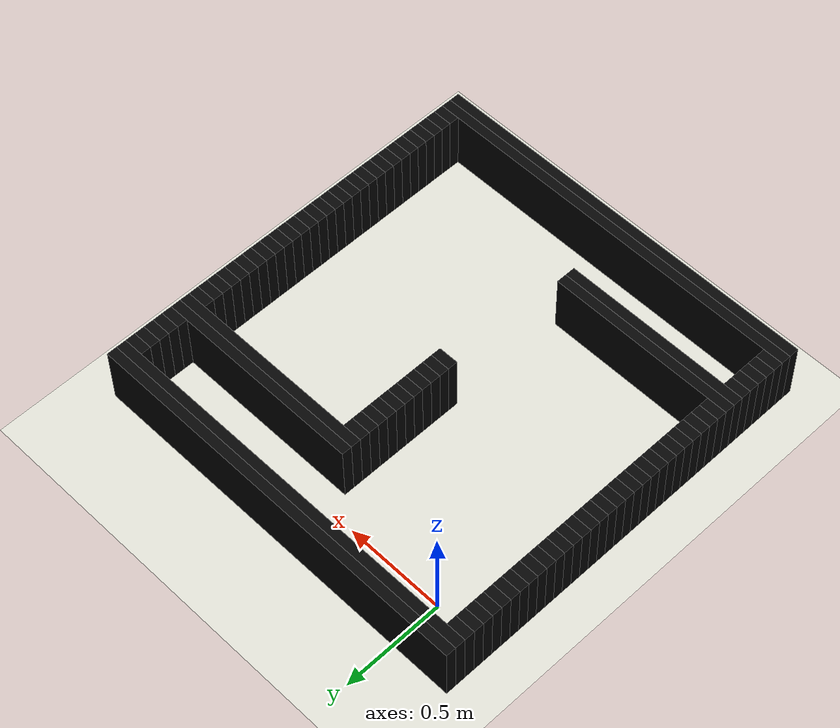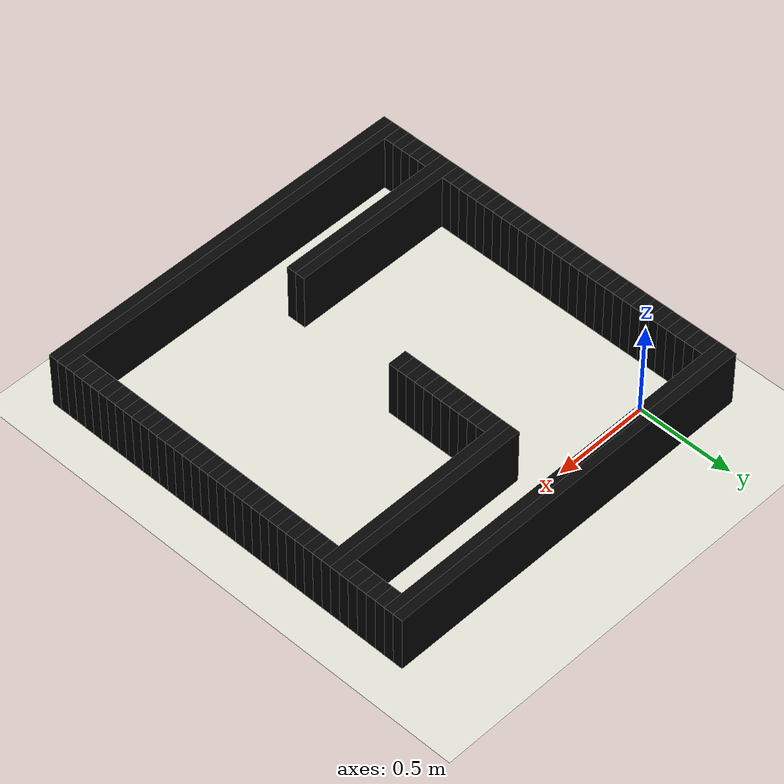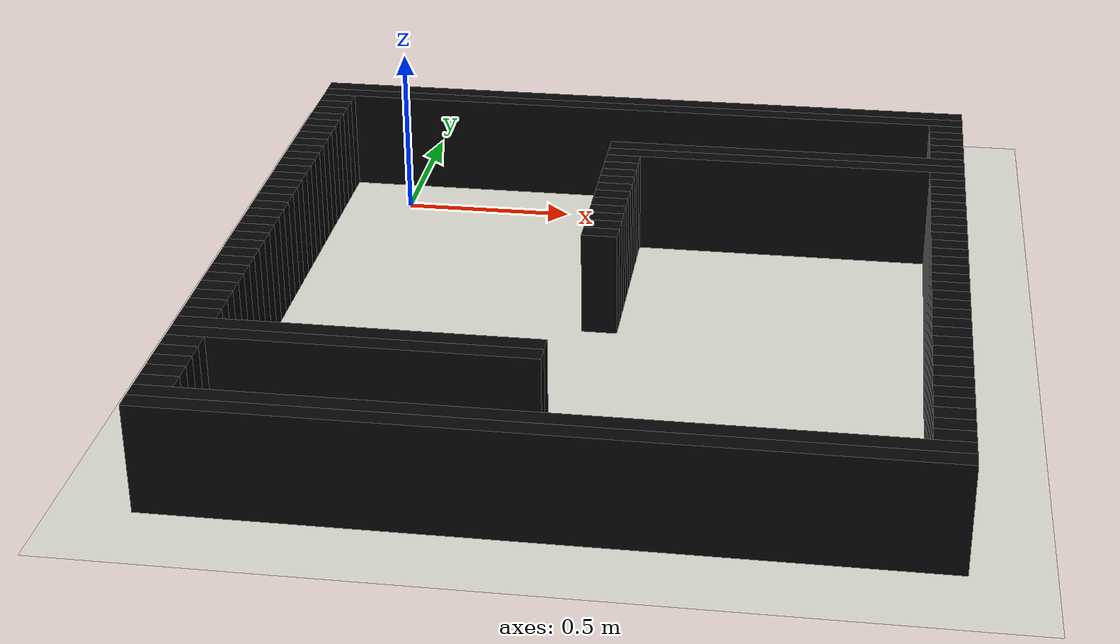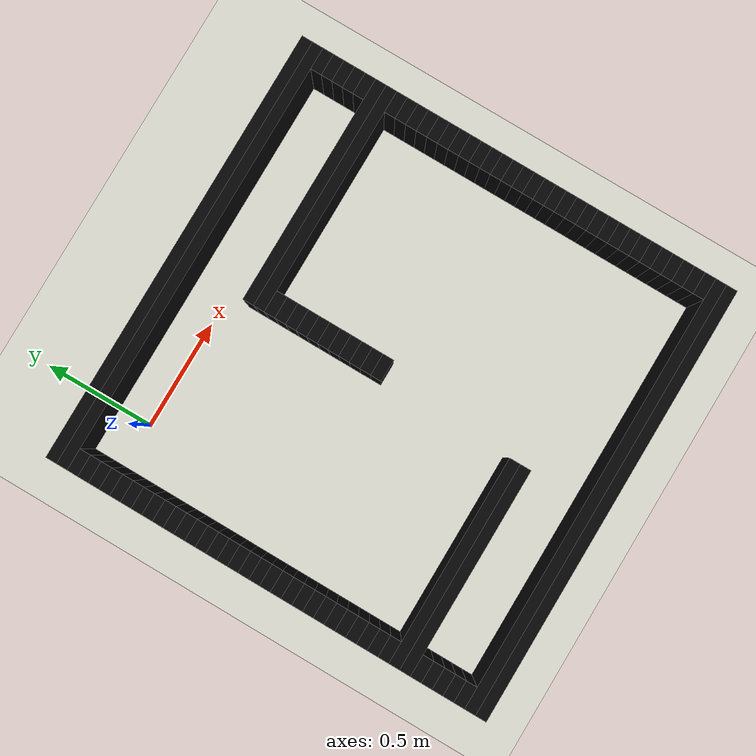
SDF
<?xml version="1.0" ?>
<sdf version="1.9">
  <world name="map1_photoshop_walls">
    <physics name="1ms" type="ignored"><max_step_size>0.001</max_step_size><real_time_factor>1.0</real_time_factor></physics>
    <plugin filename="gz-sim-physics-system" name="gz::sim::systems::Physics"/>
    <plugin filename="gz-sim-user-commands-system" name="gz::sim::systems::UserCommands"/>
    <plugin filename="gz-sim-scene-broadcaster-system" name="gz::sim::systems::SceneBroadcaster"/>
    <light name="sun" type="directional"><pose>0 0 10 0 0 0</pose><diffuse>1 1 1 1</diffuse><specular>0.2 0.2 0.2 1</specular><direction>-0.5 0.5 -1</direction></light>
    <model name="ground">
      <static>true</static>
      <link name="link">
        <collision name="collision"><geometry><plane><normal>0 0 1</normal><size>10 10</size></plane></geometry></collision>
        <visual name="visual"><geometry><plane><normal>0 0 1</normal><size>10 10</size></plane></geometry><material><ambient>0.86 0.86 0.82 1</ambient><diffuse>0.86 0.86 0.82 1</diffuse></material></visual>
      </link>
    </model>
    <model name="map1_photoshop_walls">
      <static>true</static>
      <link name="wall_0">
        <pose>0.6990 0.2240 0.1500 0 0 0</pose>
        <collision name="collision"><geometry><box><size>2.0000 0.0500 0.3000</size></box></geometry></collision>
        <visual name="visual"><geometry><box><size>2.0000 0.0500 0.3000</size></box></geometry><material><ambient>0.02 0.02 0.02 1</ambient><diffuse>0.02 0.02 0.02 1</diffuse></material></visual>
      </link>
      <link name="wall_1">
        <pose>0.6990 0.1740 0.1500 0 0 0</pose>
        <collision name="collision"><geometry><box><size>2.0000 0.0500 0.3000</size></box></geometry></collision>
        <visual name="visual"><geometry><box><size>2.0000 0.0500 0.3000</size></box></geometry><material><ambient>0.02 0.02 0.02 1</ambient><diffuse>0.02 0.02 0.02 1</diffuse></material></visual>
      </link>
      <link name="wall_2">
        <pose>-0.2510 0.1240 0.1500 0 0 0</pose>
        <collision name="collision"><geometry><box><size>0.1000 0.0500 0.3000</size></box></geometry></collision>
        <visual name="visual"><geometry><box><size>0.1000 0.0500 0.3000</size></box></geometry><material><ambient>0.02 0.02 0.02 1</ambient><diffuse>0.02 0.02 0.02 1</diffuse></material></visual>
      </link>
      <link name="wall_3">
        <pose>1.6490 0.1240 0.1500 0 0 0</pose>
        <collision name="collision"><geometry><box><size>0.1000 0.0500 0.3000</size></box></geometry></collision>
        <visual name="visual"><geometry><box><size>0.1000 0.0500 0.3000</size></box></geometry><material><ambient>0.02 0.02 0.02 1</ambient><diffuse>0.02 0.02 0.02 1</diffuse></material></visual>
      </link>
      <link name="wall_4">
        <pose>-0.2510 0.0740 0.1500 0 0 0</pose>
        <collision name="collision"><geometry><box><size>0.1000 0.0500 0.3000</size></box></geometry></collision>
        <visual name="visual"><geometry><box><size>0.1000 0.0500 0.3000</size></box></geometry><material><ambient>0.02 0.02 0.02 1</ambient><diffuse>0.02 0.02 0.02 1</diffuse></material></visual>
      </link>
      <link name="wall_5">
        <pose>1.6490 0.0740 0.1500 0 0 0</pose>
        <collision name="collision"><geometry><box><size>0.1000 0.0500 0.3000</size></box></geometry></collision>
        <visual name="visual"><geometry><box><size>0.1000 0.0500 0.3000</size></box></geometry><material><ambient>0.02 0.02 0.02 1</ambient><diffuse>0.02 0.02 0.02 1</diffuse></material></visual>
      </link>
      <link name="wall_6">
        <pose>-0.2510 0.0240 0.1500 0 0 0</pose>
        <collision name="collision"><geometry><box><size>0.1000 0.0500 0.3000</size></box></geometry></collision>
        <visual name="visual"><geometry><box><size>0.1000 0.0500 0.3000</size></box></geometry><material><ambient>0.02 0.02 0.02 1</ambient><diffuse>0.02 0.02 0.02 1</diffuse></material></visual>
      </link>
      <link name="wall_7">
        <pose>1.6490 0.0240 0.1500 0 0 0</pose>
        <collision name="collision"><geometry><box><size>0.1000 0.0500 0.3000</size></box></geometry></collision>
        <visual name="visual"><geometry><box><size>0.1000 0.0500 0.3000</size></box></geometry><material><ambient>0.02 0.02 0.02 1</ambient><diffuse>0.02 0.02 0.02 1</diffuse></material></visual>
      </link>
      <link name="wall_8">
        <pose>-0.2510 -0.0260 0.1500 0 0 0</pose>
        <collision name="collision"><geometry><box><size>0.1000 0.0500 0.3000</size></box></geometry></collision>
        <visual name="visual"><geometry><box><size>0.1000 0.0500 0.3000</size></box></geometry><material><ambient>0.02 0.02 0.02 1</ambient><diffuse>0.02 0.02 0.02 1</diffuse></material></visual>
      </link>
      <link name="wall_9">
        <pose>1.6490 -0.0260 0.1500 0 0 0</pose>
        <collision name="collision"><geometry><box><size>0.1000 0.0500 0.3000</size></box></geometry></collision>
        <visual name="visual"><geometry><box><size>0.1000 0.0500 0.3000</size></box></geometry><material><ambient>0.02 0.02 0.02 1</ambient><diffuse>0.02 0.02 0.02 1</diffuse></material></visual>
      </link>
      <link name="wall_10">
        <pose>-0.2510 -0.0760 0.1500 0 0 0</pose>
        <collision name="collision"><geometry><box><size>0.1000 0.0500 0.3000</size></box></geometry></collision>
        <visual name="visual"><geometry><box><size>0.1000 0.0500 0.3000</size></box></geometry><material><ambient>0.02 0.02 0.02 1</ambient><diffuse>0.02 0.02 0.02 1</diffuse></material></visual>
      </link>
      <link name="wall_11">
        <pose>1.6490 -0.0760 0.1500 0 0 0</pose>
        <collision name="collision"><geometry><box><size>0.1000 0.0500 0.3000</size></box></geometry></collision>
        <visual name="visual"><geometry><box><size>0.1000 0.0500 0.3000</size></box></geometry><material><ambient>0.02 0.02 0.02 1</ambient><diffuse>0.02 0.02 0.02 1</diffuse></material></visual>
      </link>
      <link name="wall_12">
        <pose>-0.2510 -0.1260 0.1500 0 0 0</pose>
        <collision name="collision"><geometry><box><size>0.1000 0.0500 0.3000</size></box></geometry></collision>
        <visual name="visual"><geometry><box><size>0.1000 0.0500 0.3000</size></box></geometry><material><ambient>0.02 0.02 0.02 1</ambient><diffuse>0.02 0.02 0.02 1</diffuse></material></visual>
      </link>
      <link name="wall_13">
        <pose>1.1740 -0.1260 0.1500 0 0 0</pose>
        <collision name="collision"><geometry><box><size>1.0500 0.0500 0.3000</size></box></geometry></collision>
        <visual name="visual"><geometry><box><size>1.0500 0.0500 0.3000</size></box></geometry><material><ambient>0.02 0.02 0.02 1</ambient><diffuse>0.02 0.02 0.02 1</diffuse></material></visual>
      </link>
      <link name="wall_14">
        <pose>-0.2510 -0.1760 0.1500 0 0 0</pose>
        <collision name="collision"><geometry><box><size>0.1000 0.0500 0.3000</size></box></geometry></collision>
        <visual name="visual"><geometry><box><size>0.1000 0.0500 0.3000</size></box></geometry><material><ambient>0.02 0.02 0.02 1</ambient><diffuse>0.02 0.02 0.02 1</diffuse></material></visual>
      </link>
      <link name="wall_15">
        <pose>1.1740 -0.1760 0.1500 0 0 0</pose>
        <collision name="collision"><geometry><box><size>1.0500 0.0500 0.3000</size></box></geometry></collision>
        <visual name="visual"><geometry><box><size>1.0500 0.0500 0.3000</size></box></geometry><material><ambient>0.02 0.02 0.02 1</ambient><diffuse>0.02 0.02 0.02 1</diffuse></material></visual>
      </link>
      <link name="wall_16">
        <pose>-0.2510 -0.2260 0.1500 0 0 0</pose>
        <collision name="collision"><geometry><box><size>0.1000 0.0500 0.3000</size></box></geometry></collision>
        <visual name="visual"><geometry><box><size>0.1000 0.0500 0.3000</size></box></geometry><material><ambient>0.02 0.02 0.02 1</ambient><diffuse>0.02 0.02 0.02 1</diffuse></material></visual>
      </link>
      <link name="wall_17">
        <pose>0.6990 -0.2260 0.1500 0 0 0</pose>
        <collision name="collision"><geometry><box><size>0.1000 0.0500 0.3000</size></box></geometry></collision>
        <visual name="visual"><geometry><box><size>0.1000 0.0500 0.3000</size></box></geometry><material><ambient>0.02 0.02 0.02 1</ambient><diffuse>0.02 0.02 0.02 1</diffuse></material></visual>
      </link>
      <link name="wall_18">
        <pose>1.6490 -0.2260 0.1500 0 0 0</pose>
        <collision name="collision"><geometry><box><size>0.1000 0.0500 0.3000</size></box></geometry></collision>
        <visual name="visual"><geometry><box><size>0.1000 0.0500 0.3000</size></box></geometry><material><ambient>0.02 0.02 0.02 1</ambient><diffuse>0.02 0.02 0.02 1</diffuse></material></visual>
      </link>
      <link name="wall_19">
        <pose>-0.2510 -0.2760 0.1500 0 0 0</pose>
        <collision name="collision"><geometry><box><size>0.1000 0.0500 0.3000</size></box></geometry></collision>
        <visual name="visual"><geometry><box><size>0.1000 0.0500 0.3000</size></box></geometry><material><ambient>0.02 0.02 0.02 1</ambient><diffuse>0.02 0.02 0.02 1</diffuse></material></visual>
      </link>
      <link name="wall_20">
        <pose>0.6990 -0.2760 0.1500 0 0 0</pose>
        <collision name="collision"><geometry><box><size>0.1000 0.0500 0.3000</size></box></geometry></collision>
        <visual name="visual"><geometry><box><size>0.1000 0.0500 0.3000</size></box></geometry><material><ambient>0.02 0.02 0.02 1</ambient><diffuse>0.02 0.02 0.02 1</diffuse></material></visual>
      </link>
      <link name="wall_21">
        <pose>1.6490 -0.2760 0.1500 0 0 0</pose>
        <collision name="collision"><geometry><box><size>0.1000 0.0500 0.3000</size></box></geometry></collision>
        <visual name="visual"><geometry><box><size>0.1000 0.0500 0.3000</size></box></geometry><material><ambient>0.02 0.02 0.02 1</ambient><diffuse>0.02 0.02 0.02 1</diffuse></material></visual>
      </link>
      <link name="wall_22">
        <pose>-0.2510 -0.3260 0.1500 0 0 0</pose>
        <collision name="collision"><geometry><box><size>0.1000 0.0500 0.3000</size></box></geometry></collision>
        <visual name="visual"><geometry><box><size>0.1000 0.0500 0.3000</size></box></geometry><material><ambient>0.02 0.02 0.02 1</ambient><diffuse>0.02 0.02 0.02 1</diffuse></material></visual>
      </link>
      <link name="wall_23">
        <pose>0.6990 -0.3260 0.1500 0 0 0</pose>
        <collision name="collision"><geometry><box><size>0.1000 0.0500 0.3000</size></box></geometry></collision>
        <visual name="visual"><geometry><box><size>0.1000 0.0500 0.3000</size></box></geometry><material><ambient>0.02 0.02 0.02 1</ambient><diffuse>0.02 0.02 0.02 1</diffuse></material></visual>
      </link>
      <link name="wall_24">
        <pose>1.6490 -0.3260 0.1500 0 0 0</pose>
        <collision name="collision"><geometry><box><size>0.1000 0.0500 0.3000</size></box></geometry></collision>
        <visual name="visual"><geometry><box><size>0.1000 0.0500 0.3000</size></box></geometry><material><ambient>0.02 0.02 0.02 1</ambient><diffuse>0.02 0.02 0.02 1</diffuse></material></visual>
      </link>
      <link name="wall_25">
        <pose>-0.2510 -0.3760 0.1500 0 0 0</pose>
        <collision name="collision"><geometry><box><size>0.1000 0.0500 0.3000</size></box></geometry></collision>
        <visual name="visual"><geometry><box><size>0.1000 0.0500 0.3000</size></box></geometry><material><ambient>0.02 0.02 0.02 1</ambient><diffuse>0.02 0.02 0.02 1</diffuse></material></visual>
      </link>
      <link name="wall_26">
        <pose>0.6990 -0.3760 0.1500 0 0 0</pose>
        <collision name="collision"><geometry><box><size>0.1000 0.0500 0.3000</size></box></geometry></collision>
        <visual name="visual"><geometry><box><size>0.1000 0.0500 0.3000</size></box></geometry><material><ambient>0.02 0.02 0.02 1</ambient><diffuse>0.02 0.02 0.02 1</diffuse></material></visual>
      </link>
      <link name="wall_27">
        <pose>1.6490 -0.3760 0.1500 0 0 0</pose>
        <collision name="collision"><geometry><box><size>0.1000 0.0500 0.3000</size></box></geometry></collision>
        <visual name="visual"><geometry><box><size>0.1000 0.0500 0.3000</size></box></geometry><material><ambient>0.02 0.02 0.02 1</ambient><diffuse>0.02 0.02 0.02 1</diffuse></material></visual>
      </link>
      <link name="wall_28">
        <pose>-0.2510 -0.4260 0.1500 0 0 0</pose>
        <collision name="collision"><geometry><box><size>0.1000 0.0500 0.3000</size></box></geometry></collision>
        <visual name="visual"><geometry><box><size>0.1000 0.0500 0.3000</size></box></geometry><material><ambient>0.02 0.02 0.02 1</ambient><diffuse>0.02 0.02 0.02 1</diffuse></material></visual>
      </link>
      <link name="wall_29">
        <pose>0.6990 -0.4260 0.1500 0 0 0</pose>
        <collision name="collision"><geometry><box><size>0.1000 0.0500 0.3000</size></box></geometry></collision>
        <visual name="visual"><geometry><box><size>0.1000 0.0500 0.3000</size></box></geometry><material><ambient>0.02 0.02 0.02 1</ambient><diffuse>0.02 0.02 0.02 1</diffuse></material></visual>
      </link>
      <link name="wall_30">
        <pose>1.6490 -0.4260 0.1500 0 0 0</pose>
        <collision name="collision"><geometry><box><size>0.1000 0.0500 0.3000</size></box></geometry></collision>
        <visual name="visual"><geometry><box><size>0.1000 0.0500 0.3000</size></box></geometry><material><ambient>0.02 0.02 0.02 1</ambient><diffuse>0.02 0.02 0.02 1</diffuse></material></visual>
      </link>
      <link name="wall_31">
        <pose>-0.2510 -0.4760 0.1500 0 0 0</pose>
        <collision name="collision"><geometry><box><size>0.1000 0.0500 0.3000</size></box></geometry></collision>
        <visual name="visual"><geometry><box><size>0.1000 0.0500 0.3000</size></box></geometry><material><ambient>0.02 0.02 0.02 1</ambient><diffuse>0.02 0.02 0.02 1</diffuse></material></visual>
      </link>
      <link name="wall_32">
        <pose>0.6990 -0.4760 0.1500 0 0 0</pose>
        <collision name="collision"><geometry><box><size>0.1000 0.0500 0.3000</size></box></geometry></collision>
        <visual name="visual"><geometry><box><size>0.1000 0.0500 0.3000</size></box></geometry><material><ambient>0.02 0.02 0.02 1</ambient><diffuse>0.02 0.02 0.02 1</diffuse></material></visual>
      </link>
      <link name="wall_33">
        <pose>1.6490 -0.4760 0.1500 0 0 0</pose>
        <collision name="collision"><geometry><box><size>0.1000 0.0500 0.3000</size></box></geometry></collision>
        <visual name="visual"><geometry><box><size>0.1000 0.0500 0.3000</size></box></geometry><material><ambient>0.02 0.02 0.02 1</ambient><diffuse>0.02 0.02 0.02 1</diffuse></material></visual>
      </link>
      <link name="wall_34">
        <pose>-0.2510 -0.5260 0.1500 0 0 0</pose>
        <collision name="collision"><geometry><box><size>0.1000 0.0500 0.3000</size></box></geometry></collision>
        <visual name="visual"><geometry><box><size>0.1000 0.0500 0.3000</size></box></geometry><material><ambient>0.02 0.02 0.02 1</ambient><diffuse>0.02 0.02 0.02 1</diffuse></material></visual>
      </link>
      <link name="wall_35">
        <pose>0.6990 -0.5260 0.1500 0 0 0</pose>
        <collision name="collision"><geometry><box><size>0.1000 0.0500 0.3000</size></box></geometry></collision>
        <visual name="visual"><geometry><box><size>0.1000 0.0500 0.3000</size></box></geometry><material><ambient>0.02 0.02 0.02 1</ambient><diffuse>0.02 0.02 0.02 1</diffuse></material></visual>
      </link>
      <link name="wall_36">
        <pose>1.6490 -0.5260 0.1500 0 0 0</pose>
        <collision name="collision"><geometry><box><size>0.1000 0.0500 0.3000</size></box></geometry></collision>
        <visual name="visual"><geometry><box><size>0.1000 0.0500 0.3000</size></box></geometry><material><ambient>0.02 0.02 0.02 1</ambient><diffuse>0.02 0.02 0.02 1</diffuse></material></visual>
      </link>
      <link name="wall_37">
        <pose>-0.2510 -0.5760 0.1500 0 0 0</pose>
        <collision name="collision"><geometry><box><size>0.1000 0.0500 0.3000</size></box></geometry></collision>
        <visual name="visual"><geometry><box><size>0.1000 0.0500 0.3000</size></box></geometry><material><ambient>0.02 0.02 0.02 1</ambient><diffuse>0.02 0.02 0.02 1</diffuse></material></visual>
      </link>
      <link name="wall_38">
        <pose>0.6990 -0.5760 0.1500 0 0 0</pose>
        <collision name="collision"><geometry><box><size>0.1000 0.0500 0.3000</size></box></geometry></collision>
        <visual name="visual"><geometry><box><size>0.1000 0.0500 0.3000</size></box></geometry><material><ambient>0.02 0.02 0.02 1</ambient><diffuse>0.02 0.02 0.02 1</diffuse></material></visual>
      </link>
      <link name="wall_39">
        <pose>1.6490 -0.5760 0.1500 0 0 0</pose>
        <collision name="collision"><geometry><box><size>0.1000 0.0500 0.3000</size></box></geometry></collision>
        <visual name="visual"><geometry><box><size>0.1000 0.0500 0.3000</size></box></geometry><material><ambient>0.02 0.02 0.02 1</ambient><diffuse>0.02 0.02 0.02 1</diffuse></material></visual>
      </link>
      <link name="wall_40">
        <pose>-0.2510 -0.6260 0.1500 0 0 0</pose>
        <collision name="collision"><geometry><box><size>0.1000 0.0500 0.3000</size></box></geometry></collision>
        <visual name="visual"><geometry><box><size>0.1000 0.0500 0.3000</size></box></geometry><material><ambient>0.02 0.02 0.02 1</ambient><diffuse>0.02 0.02 0.02 1</diffuse></material></visual>
      </link>
      <link name="wall_41">
        <pose>0.6990 -0.6260 0.1500 0 0 0</pose>
        <collision name="collision"><geometry><box><size>0.1000 0.0500 0.3000</size></box></geometry></collision>
        <visual name="visual"><geometry><box><size>0.1000 0.0500 0.3000</size></box></geometry><material><ambient>0.02 0.02 0.02 1</ambient><diffuse>0.02 0.02 0.02 1</diffuse></material></visual>
      </link>
      <link name="wall_42">
        <pose>1.6490 -0.6260 0.1500 0 0 0</pose>
        <collision name="collision"><geometry><box><size>0.1000 0.0500 0.3000</size></box></geometry></collision>
        <visual name="visual"><geometry><box><size>0.1000 0.0500 0.3000</size></box></geometry><material><ambient>0.02 0.02 0.02 1</ambient><diffuse>0.02 0.02 0.02 1</diffuse></material></visual>
      </link>
      <link name="wall_43">
        <pose>-0.2510 -0.6760 0.1500 0 0 0</pose>
        <collision name="collision"><geometry><box><size>0.1000 0.0500 0.3000</size></box></geometry></collision>
        <visual name="visual"><geometry><box><size>0.1000 0.0500 0.3000</size></box></geometry><material><ambient>0.02 0.02 0.02 1</ambient><diffuse>0.02 0.02 0.02 1</diffuse></material></visual>
      </link>
      <link name="wall_44">
        <pose>0.6990 -0.6760 0.1500 0 0 0</pose>
        <collision name="collision"><geometry><box><size>0.1000 0.0500 0.3000</size></box></geometry></collision>
        <visual name="visual"><geometry><box><size>0.1000 0.0500 0.3000</size></box></geometry><material><ambient>0.02 0.02 0.02 1</ambient><diffuse>0.02 0.02 0.02 1</diffuse></material></visual>
      </link>
      <link name="wall_45">
        <pose>1.6490 -0.6760 0.1500 0 0 0</pose>
        <collision name="collision"><geometry><box><size>0.1000 0.0500 0.3000</size></box></geometry></collision>
        <visual name="visual"><geometry><box><size>0.1000 0.0500 0.3000</size></box></geometry><material><ambient>0.02 0.02 0.02 1</ambient><diffuse>0.02 0.02 0.02 1</diffuse></material></visual>
      </link>
      <link name="wall_46">
        <pose>-0.2510 -0.7260 0.1500 0 0 0</pose>
        <collision name="collision"><geometry><box><size>0.1000 0.0500 0.3000</size></box></geometry></collision>
        <visual name="visual"><geometry><box><size>0.1000 0.0500 0.3000</size></box></geometry><material><ambient>0.02 0.02 0.02 1</ambient><diffuse>0.02 0.02 0.02 1</diffuse></material></visual>
      </link>
      <link name="wall_47">
        <pose>0.6990 -0.7260 0.1500 0 0 0</pose>
        <collision name="collision"><geometry><box><size>0.1000 0.0500 0.3000</size></box></geometry></collision>
        <visual name="visual"><geometry><box><size>0.1000 0.0500 0.3000</size></box></geometry><material><ambient>0.02 0.02 0.02 1</ambient><diffuse>0.02 0.02 0.02 1</diffuse></material></visual>
      </link>
      <link name="wall_48">
        <pose>1.6490 -0.7260 0.1500 0 0 0</pose>
        <collision name="collision"><geometry><box><size>0.1000 0.0500 0.3000</size></box></geometry></collision>
        <visual name="visual"><geometry><box><size>0.1000 0.0500 0.3000</size></box></geometry><material><ambient>0.02 0.02 0.02 1</ambient><diffuse>0.02 0.02 0.02 1</diffuse></material></visual>
      </link>
      <link name="wall_49">
        <pose>-0.2510 -0.7760 0.1500 0 0 0</pose>
        <collision name="collision"><geometry><box><size>0.1000 0.0500 0.3000</size></box></geometry></collision>
        <visual name="visual"><geometry><box><size>0.1000 0.0500 0.3000</size></box></geometry><material><ambient>0.02 0.02 0.02 1</ambient><diffuse>0.02 0.02 0.02 1</diffuse></material></visual>
      </link>
      <link name="wall_50">
        <pose>1.6490 -0.7760 0.1500 0 0 0</pose>
        <collision name="collision"><geometry><box><size>0.1000 0.0500 0.3000</size></box></geometry></collision>
        <visual name="visual"><geometry><box><size>0.1000 0.0500 0.3000</size></box></geometry><material><ambient>0.02 0.02 0.02 1</ambient><diffuse>0.02 0.02 0.02 1</diffuse></material></visual>
      </link>
      <link name="wall_51">
        <pose>-0.2510 -0.8260 0.1500 0 0 0</pose>
        <collision name="collision"><geometry><box><size>0.1000 0.0500 0.3000</size></box></geometry></collision>
        <visual name="visual"><geometry><box><size>0.1000 0.0500 0.3000</size></box></geometry><material><ambient>0.02 0.02 0.02 1</ambient><diffuse>0.02 0.02 0.02 1</diffuse></material></visual>
      </link>
      <link name="wall_52">
        <pose>1.6490 -0.8260 0.1500 0 0 0</pose>
        <collision name="collision"><geometry><box><size>0.1000 0.0500 0.3000</size></box></geometry></collision>
        <visual name="visual"><geometry><box><size>0.1000 0.0500 0.3000</size></box></geometry><material><ambient>0.02 0.02 0.02 1</ambient><diffuse>0.02 0.02 0.02 1</diffuse></material></visual>
      </link>
      <link name="wall_53">
        <pose>-0.2510 -0.8760 0.1500 0 0 0</pose>
        <collision name="collision"><geometry><box><size>0.1000 0.0500 0.3000</size></box></geometry></collision>
        <visual name="visual"><geometry><box><size>0.1000 0.0500 0.3000</size></box></geometry><material><ambient>0.02 0.02 0.02 1</ambient><diffuse>0.02 0.02 0.02 1</diffuse></material></visual>
      </link>
      <link name="wall_54">
        <pose>1.6490 -0.8760 0.1500 0 0 0</pose>
        <collision name="collision"><geometry><box><size>0.1000 0.0500 0.3000</size></box></geometry></collision>
        <visual name="visual"><geometry><box><size>0.1000 0.0500 0.3000</size></box></geometry><material><ambient>0.02 0.02 0.02 1</ambient><diffuse>0.02 0.02 0.02 1</diffuse></material></visual>
      </link>
      <link name="wall_55">
        <pose>-0.2510 -0.9260 0.1500 0 0 0</pose>
        <collision name="collision"><geometry><box><size>0.1000 0.0500 0.3000</size></box></geometry></collision>
        <visual name="visual"><geometry><box><size>0.1000 0.0500 0.3000</size></box></geometry><material><ambient>0.02 0.02 0.02 1</ambient><diffuse>0.02 0.02 0.02 1</diffuse></material></visual>
      </link>
      <link name="wall_56">
        <pose>1.6490 -0.9260 0.1500 0 0 0</pose>
        <collision name="collision"><geometry><box><size>0.1000 0.0500 0.3000</size></box></geometry></collision>
        <visual name="visual"><geometry><box><size>0.1000 0.0500 0.3000</size></box></geometry><material><ambient>0.02 0.02 0.02 1</ambient><diffuse>0.02 0.02 0.02 1</diffuse></material></visual>
      </link>
      <link name="wall_57">
        <pose>-0.2510 -0.9760 0.1500 0 0 0</pose>
        <collision name="collision"><geometry><box><size>0.1000 0.0500 0.3000</size></box></geometry></collision>
        <visual name="visual"><geometry><box><size>0.1000 0.0500 0.3000</size></box></geometry><material><ambient>0.02 0.02 0.02 1</ambient><diffuse>0.02 0.02 0.02 1</diffuse></material></visual>
      </link>
      <link name="wall_58">
        <pose>1.6490 -0.9760 0.1500 0 0 0</pose>
        <collision name="collision"><geometry><box><size>0.1000 0.0500 0.3000</size></box></geometry></collision>
        <visual name="visual"><geometry><box><size>0.1000 0.0500 0.3000</size></box></geometry><material><ambient>0.02 0.02 0.02 1</ambient><diffuse>0.02 0.02 0.02 1</diffuse></material></visual>
      </link>
      <link name="wall_59">
        <pose>-0.2510 -1.0260 0.1500 0 0 0</pose>
        <collision name="collision"><geometry><box><size>0.1000 0.0500 0.3000</size></box></geometry></collision>
        <visual name="visual"><geometry><box><size>0.1000 0.0500 0.3000</size></box></geometry><material><ambient>0.02 0.02 0.02 1</ambient><diffuse>0.02 0.02 0.02 1</diffuse></material></visual>
      </link>
      <link name="wall_60">
        <pose>1.6490 -1.0260 0.1500 0 0 0</pose>
        <collision name="collision"><geometry><box><size>0.1000 0.0500 0.3000</size></box></geometry></collision>
        <visual name="visual"><geometry><box><size>0.1000 0.0500 0.3000</size></box></geometry><material><ambient>0.02 0.02 0.02 1</ambient><diffuse>0.02 0.02 0.02 1</diffuse></material></visual>
      </link>
      <link name="wall_61">
        <pose>-0.2510 -1.0760 0.1500 0 0 0</pose>
        <collision name="collision"><geometry><box><size>0.1000 0.0500 0.3000</size></box></geometry></collision>
        <visual name="visual"><geometry><box><size>0.1000 0.0500 0.3000</size></box></geometry><material><ambient>0.02 0.02 0.02 1</ambient><diffuse>0.02 0.02 0.02 1</diffuse></material></visual>
      </link>
      <link name="wall_62">
        <pose>1.6490 -1.0760 0.1500 0 0 0</pose>
        <collision name="collision"><geometry><box><size>0.1000 0.0500 0.3000</size></box></geometry></collision>
        <visual name="visual"><geometry><box><size>0.1000 0.0500 0.3000</size></box></geometry><material><ambient>0.02 0.02 0.02 1</ambient><diffuse>0.02 0.02 0.02 1</diffuse></material></visual>
      </link>
      <link name="wall_63">
        <pose>-0.2510 -1.1260 0.1500 0 0 0</pose>
        <collision name="collision"><geometry><box><size>0.1000 0.0500 0.3000</size></box></geometry></collision>
        <visual name="visual"><geometry><box><size>0.1000 0.0500 0.3000</size></box></geometry><material><ambient>0.02 0.02 0.02 1</ambient><diffuse>0.02 0.02 0.02 1</diffuse></material></visual>
      </link>
      <link name="wall_64">
        <pose>1.6490 -1.1260 0.1500 0 0 0</pose>
        <collision name="collision"><geometry><box><size>0.1000 0.0500 0.3000</size></box></geometry></collision>
        <visual name="visual"><geometry><box><size>0.1000 0.0500 0.3000</size></box></geometry><material><ambient>0.02 0.02 0.02 1</ambient><diffuse>0.02 0.02 0.02 1</diffuse></material></visual>
      </link>
      <link name="wall_65">
        <pose>-0.2510 -1.1760 0.1500 0 0 0</pose>
        <collision name="collision"><geometry><box><size>0.1000 0.0500 0.3000</size></box></geometry></collision>
        <visual name="visual"><geometry><box><size>0.1000 0.0500 0.3000</size></box></geometry><material><ambient>0.02 0.02 0.02 1</ambient><diffuse>0.02 0.02 0.02 1</diffuse></material></visual>
      </link>
      <link name="wall_66">
        <pose>1.6490 -1.1760 0.1500 0 0 0</pose>
        <collision name="collision"><geometry><box><size>0.1000 0.0500 0.3000</size></box></geometry></collision>
        <visual name="visual"><geometry><box><size>0.1000 0.0500 0.3000</size></box></geometry><material><ambient>0.02 0.02 0.02 1</ambient><diffuse>0.02 0.02 0.02 1</diffuse></material></visual>
      </link>
      <link name="wall_67">
        <pose>-0.2510 -1.2260 0.1500 0 0 0</pose>
        <collision name="collision"><geometry><box><size>0.1000 0.0500 0.3000</size></box></geometry></collision>
        <visual name="visual"><geometry><box><size>0.1000 0.0500 0.3000</size></box></geometry><material><ambient>0.02 0.02 0.02 1</ambient><diffuse>0.02 0.02 0.02 1</diffuse></material></visual>
      </link>
      <link name="wall_68">
        <pose>1.6490 -1.2260 0.1500 0 0 0</pose>
        <collision name="collision"><geometry><box><size>0.1000 0.0500 0.3000</size></box></geometry></collision>
        <visual name="visual"><geometry><box><size>0.1000 0.0500 0.3000</size></box></geometry><material><ambient>0.02 0.02 0.02 1</ambient><diffuse>0.02 0.02 0.02 1</diffuse></material></visual>
      </link>
      <link name="wall_69">
        <pose>-0.2510 -1.2760 0.1500 0 0 0</pose>
        <collision name="collision"><geometry><box><size>0.1000 0.0500 0.3000</size></box></geometry></collision>
        <visual name="visual"><geometry><box><size>0.1000 0.0500 0.3000</size></box></geometry><material><ambient>0.02 0.02 0.02 1</ambient><diffuse>0.02 0.02 0.02 1</diffuse></material></visual>
      </link>
      <link name="wall_70">
        <pose>1.6490 -1.2760 0.1500 0 0 0</pose>
        <collision name="collision"><geometry><box><size>0.1000 0.0500 0.3000</size></box></geometry></collision>
        <visual name="visual"><geometry><box><size>0.1000 0.0500 0.3000</size></box></geometry><material><ambient>0.02 0.02 0.02 1</ambient><diffuse>0.02 0.02 0.02 1</diffuse></material></visual>
      </link>
      <link name="wall_71">
        <pose>-0.2510 -1.3260 0.1500 0 0 0</pose>
        <collision name="collision"><geometry><box><size>0.1000 0.0500 0.3000</size></box></geometry></collision>
        <visual name="visual"><geometry><box><size>0.1000 0.0500 0.3000</size></box></geometry><material><ambient>0.02 0.02 0.02 1</ambient><diffuse>0.02 0.02 0.02 1</diffuse></material></visual>
      </link>
      <link name="wall_72">
        <pose>1.6490 -1.3260 0.1500 0 0 0</pose>
        <collision name="collision"><geometry><box><size>0.1000 0.0500 0.3000</size></box></geometry></collision>
        <visual name="visual"><geometry><box><size>0.1000 0.0500 0.3000</size></box></geometry><material><ambient>0.02 0.02 0.02 1</ambient><diffuse>0.02 0.02 0.02 1</diffuse></material></visual>
      </link>
      <link name="wall_73">
        <pose>0.1740 -1.3760 0.1500 0 0 0</pose>
        <collision name="collision"><geometry><box><size>0.9500 0.0500 0.3000</size></box></geometry></collision>
        <visual name="visual"><geometry><box><size>0.9500 0.0500 0.3000</size></box></geometry><material><ambient>0.02 0.02 0.02 1</ambient><diffuse>0.02 0.02 0.02 1</diffuse></material></visual>
      </link>
      <link name="wall_74">
        <pose>1.6490 -1.3760 0.1500 0 0 0</pose>
        <collision name="collision"><geometry><box><size>0.1000 0.0500 0.3000</size></box></geometry></collision>
        <visual name="visual"><geometry><box><size>0.1000 0.0500 0.3000</size></box></geometry><material><ambient>0.02 0.02 0.02 1</ambient><diffuse>0.02 0.02 0.02 1</diffuse></material></visual>
      </link>
      <link name="wall_75">
        <pose>0.1740 -1.4260 0.1500 0 0 0</pose>
        <collision name="collision"><geometry><box><size>0.9500 0.0500 0.3000</size></box></geometry></collision>
        <visual name="visual"><geometry><box><size>0.9500 0.0500 0.3000</size></box></geometry><material><ambient>0.02 0.02 0.02 1</ambient><diffuse>0.02 0.02 0.02 1</diffuse></material></visual>
      </link>
      <link name="wall_76">
        <pose>1.6490 -1.4260 0.1500 0 0 0</pose>
        <collision name="collision"><geometry><box><size>0.1000 0.0500 0.3000</size></box></geometry></collision>
        <visual name="visual"><geometry><box><size>0.1000 0.0500 0.3000</size></box></geometry><material><ambient>0.02 0.02 0.02 1</ambient><diffuse>0.02 0.02 0.02 1</diffuse></material></visual>
      </link>
      <link name="wall_77">
        <pose>-0.2510 -1.4760 0.1500 0 0 0</pose>
        <collision name="collision"><geometry><box><size>0.1000 0.0500 0.3000</size></box></geometry></collision>
        <visual name="visual"><geometry><box><size>0.1000 0.0500 0.3000</size></box></geometry><material><ambient>0.02 0.02 0.02 1</ambient><diffuse>0.02 0.02 0.02 1</diffuse></material></visual>
      </link>
      <link name="wall_78">
        <pose>1.6490 -1.4760 0.1500 0 0 0</pose>
        <collision name="collision"><geometry><box><size>0.1000 0.0500 0.3000</size></box></geometry></collision>
        <visual name="visual"><geometry><box><size>0.1000 0.0500 0.3000</size></box></geometry><material><ambient>0.02 0.02 0.02 1</ambient><diffuse>0.02 0.02 0.02 1</diffuse></material></visual>
      </link>
      <link name="wall_79">
        <pose>-0.2510 -1.5260 0.1500 0 0 0</pose>
        <collision name="collision"><geometry><box><size>0.1000 0.0500 0.3000</size></box></geometry></collision>
        <visual name="visual"><geometry><box><size>0.1000 0.0500 0.3000</size></box></geometry><material><ambient>0.02 0.02 0.02 1</ambient><diffuse>0.02 0.02 0.02 1</diffuse></material></visual>
      </link>
      <link name="wall_80">
        <pose>1.6490 -1.5260 0.1500 0 0 0</pose>
        <collision name="collision"><geometry><box><size>0.1000 0.0500 0.3000</size></box></geometry></collision>
        <visual name="visual"><geometry><box><size>0.1000 0.0500 0.3000</size></box></geometry><material><ambient>0.02 0.02 0.02 1</ambient><diffuse>0.02 0.02 0.02 1</diffuse></material></visual>
      </link>
      <link name="wall_81">
        <pose>-0.2510 -1.5760 0.1500 0 0 0</pose>
        <collision name="collision"><geometry><box><size>0.1000 0.0500 0.3000</size></box></geometry></collision>
        <visual name="visual"><geometry><box><size>0.1000 0.0500 0.3000</size></box></geometry><material><ambient>0.02 0.02 0.02 1</ambient><diffuse>0.02 0.02 0.02 1</diffuse></material></visual>
      </link>
      <link name="wall_82">
        <pose>1.6490 -1.5760 0.1500 0 0 0</pose>
        <collision name="collision"><geometry><box><size>0.1000 0.0500 0.3000</size></box></geometry></collision>
        <visual name="visual"><geometry><box><size>0.1000 0.0500 0.3000</size></box></geometry><material><ambient>0.02 0.02 0.02 1</ambient><diffuse>0.02 0.02 0.02 1</diffuse></material></visual>
      </link>
      <link name="wall_83">
        <pose>-0.2510 -1.6260 0.1500 0 0 0</pose>
        <collision name="collision"><geometry><box><size>0.1000 0.0500 0.3000</size></box></geometry></collision>
        <visual name="visual"><geometry><box><size>0.1000 0.0500 0.3000</size></box></geometry><material><ambient>0.02 0.02 0.02 1</ambient><diffuse>0.02 0.02 0.02 1</diffuse></material></visual>
      </link>
      <link name="wall_84">
        <pose>1.6490 -1.6260 0.1500 0 0 0</pose>
        <collision name="collision"><geometry><box><size>0.1000 0.0500 0.3000</size></box></geometry></collision>
        <visual name="visual"><geometry><box><size>0.1000 0.0500 0.3000</size></box></geometry><material><ambient>0.02 0.02 0.02 1</ambient><diffuse>0.02 0.02 0.02 1</diffuse></material></visual>
      </link>
      <link name="wall_85">
        <pose>-0.2510 -1.6760 0.1500 0 0 0</pose>
        <collision name="collision"><geometry><box><size>0.1000 0.0500 0.3000</size></box></geometry></collision>
        <visual name="visual"><geometry><box><size>0.1000 0.0500 0.3000</size></box></geometry><material><ambient>0.02 0.02 0.02 1</ambient><diffuse>0.02 0.02 0.02 1</diffuse></material></visual>
      </link>
      <link name="wall_86">
        <pose>1.6490 -1.6760 0.1500 0 0 0</pose>
        <collision name="collision"><geometry><box><size>0.1000 0.0500 0.3000</size></box></geometry></collision>
        <visual name="visual"><geometry><box><size>0.1000 0.0500 0.3000</size></box></geometry><material><ambient>0.02 0.02 0.02 1</ambient><diffuse>0.02 0.02 0.02 1</diffuse></material></visual>
      </link>
      <link name="wall_87">
        <pose>0.6990 -1.7260 0.1500 0 0 0</pose>
        <collision name="collision"><geometry><box><size>2.0000 0.0500 0.3000</size></box></geometry></collision>
        <visual name="visual"><geometry><box><size>2.0000 0.0500 0.3000</size></box></geometry><material><ambient>0.02 0.02 0.02 1</ambient><diffuse>0.02 0.02 0.02 1</diffuse></material></visual>
      </link>
      <link name="wall_88">
        <pose>0.6990 -1.7760 0.1500 0 0 0</pose>
        <collision name="collision"><geometry><box><size>2.0000 0.0500 0.3000</size></box></geometry></collision>
        <visual name="visual"><geometry><box><size>2.0000 0.0500 0.3000</size></box></geometry><material><ambient>0.02 0.02 0.02 1</ambient><diffuse>0.02 0.02 0.02 1</diffuse></material></visual>
      </link>
    </model>
  </world>
</sdf>
